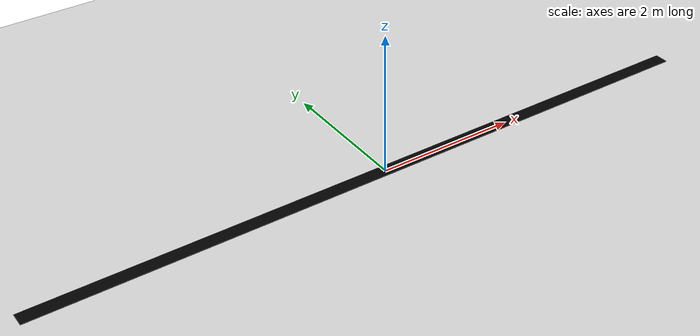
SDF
<?xml version="1.0" ?>
<sdf version="1.9">

<world name="line_world">

  <!-- Physics -->
  <plugin filename="gz-sim-physics-system" name="gz::sim::systems::Physics"/>
  <plugin filename="gz-sim-user-commands-system" name="gz::sim::systems::UserCommands"/>

  <!-- Light -->
  <light type="directional" name="sun">
    <cast_shadows>true</cast_shadows>
    <pose>0 0 10 0 0 0</pose>
    <diffuse>0.8 0.8 0.8 1</diffuse>
  </light>

  <!-- Ground -->
  <model name="ground">
    <static>true</static>
    <link name="link">
      <collision name="collision">
        <geometry>
          <plane>
            <normal>0 0 1</normal>
            <size>20 20</size>
          </plane>
        </geometry>
      </collision>
      <visual name="visual">
        <geometry>
          <plane>
            <normal>0 0 1</normal>
            <size>20 20</size>
          </plane>
        </geometry>
        <material>
          <ambient>0.8 0.8 0.8 1</ambient>
          <diffuse>0.8 0.8 0.8 1</diffuse>
        </material>
      </visual>
    </link>
  </model>

  <!-- BLACK LINE -->
  <model name="line">
    <static>true</static>
    <link name="link">
      <collision name="collision">
        <geometry>
          <box>
            <size>10 0.2 0.01</size>
          </box>
        </geometry>
      </collision>

      <visual name="visual">
        <geometry>
          <box>
            <size>10 0.2 0.01</size>
          </box>
        </geometry>
        <material>
          <ambient>0 0 0 1</ambient>
          <diffuse>0 0 0 1</diffuse>
        </material>
      </visual>
    </link>

    <!-- position of line -->
    <pose>0 0 0.01 0 0 0</pose>
  </model>

</world>

</sdf>
